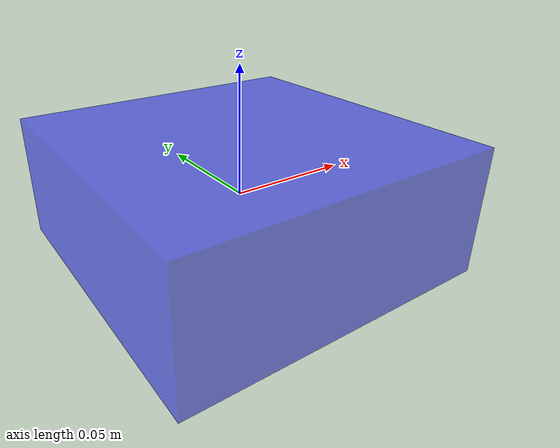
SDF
<?xml version="1.0"?>
<sdf version="1.7">
  <model name="box_blue">
    <link name="box_link_blue">
      <inertial>
        <pose>0.0 0.0 0.0 0.0 0.0 0.0</pose>
        <mass>0.5</mass>
        <inertia>
          <ixx>0.00052</ixx>
          <ixy>0</ixy>
          <ixz>0</ixz>
          <iyy>0.00052</iyy>
          <iyz>0</iyz>
          <izz>0.00085</izz>
        </inertia>
      </inertial>
      <visual name="visual">
        <pose>0 0 0. 0 0 0</pose>
        <geometry>
          <box>
            <size>0.125 0.125 0.05</size>
          </box>
        </geometry>
        <material>
         <diffuse>0 0 1 0.5</diffuse>
        </material>
      </visual>
    </link>
    <frame name="box_center_blue">
      <pose relative_to="box_link_blue">0 0 0. 0 0 0</pose>
    </frame>
  </model>
</sdf>
